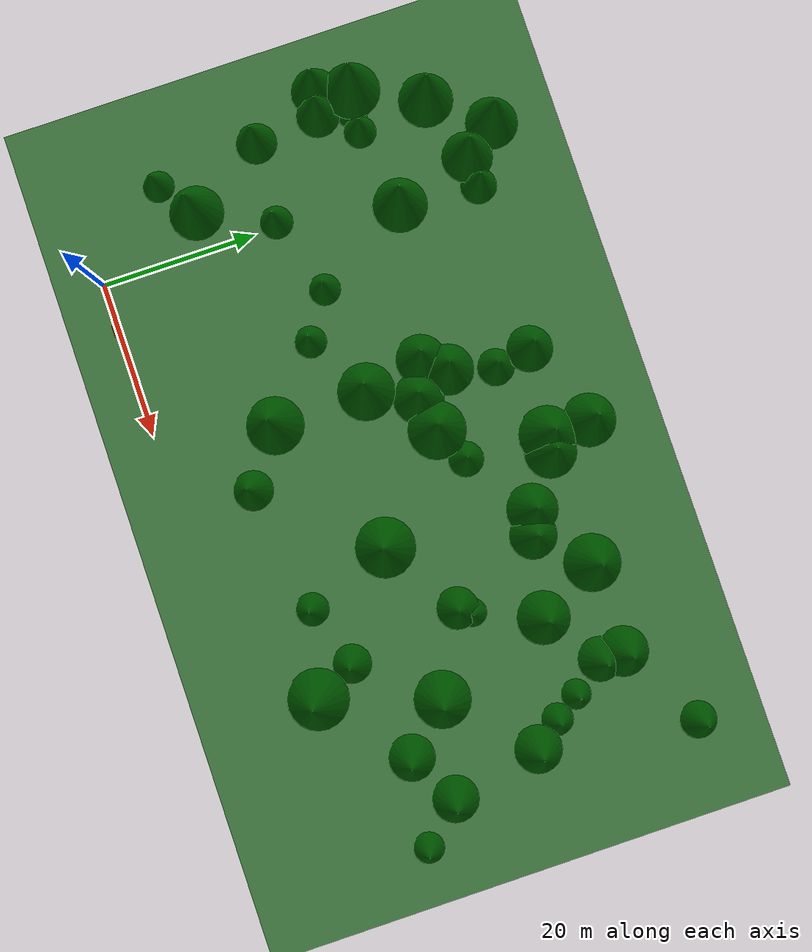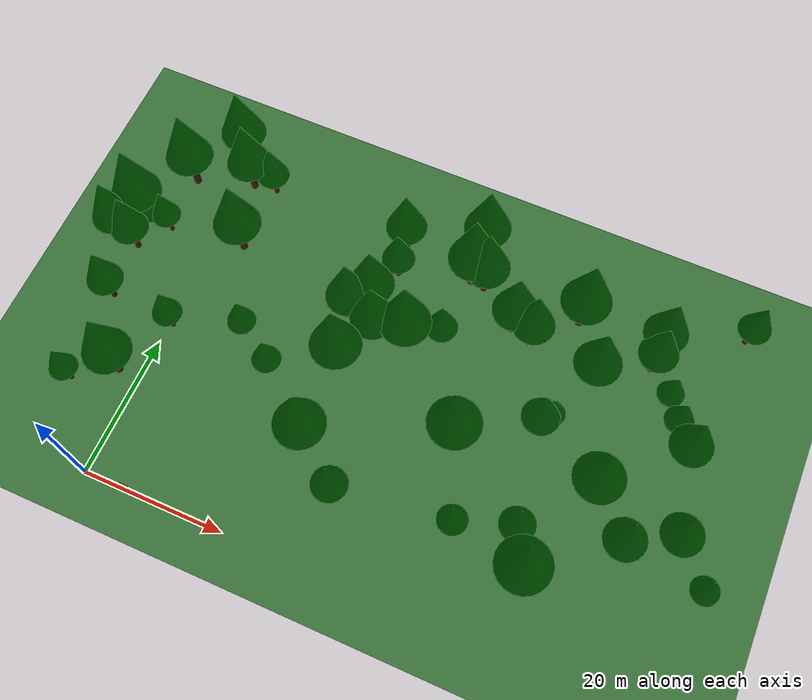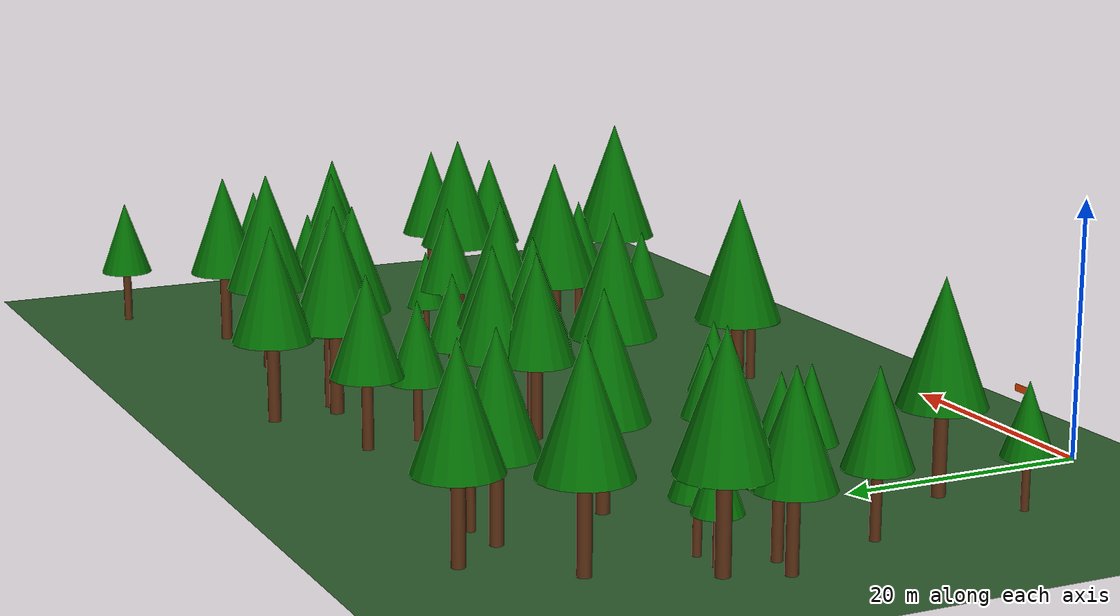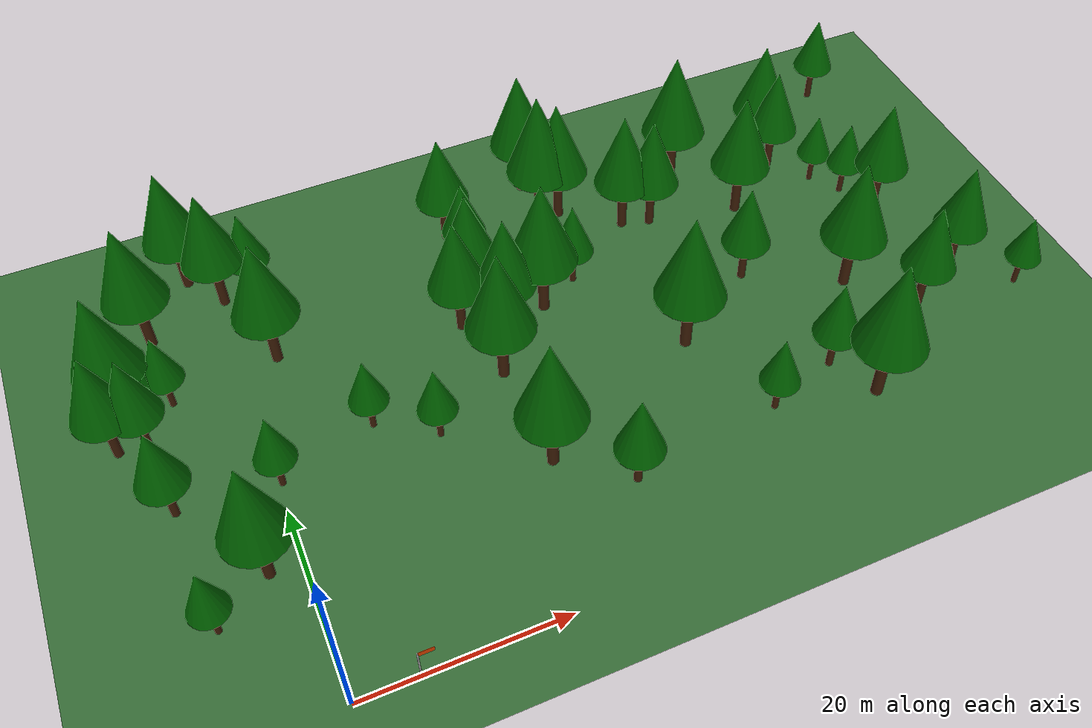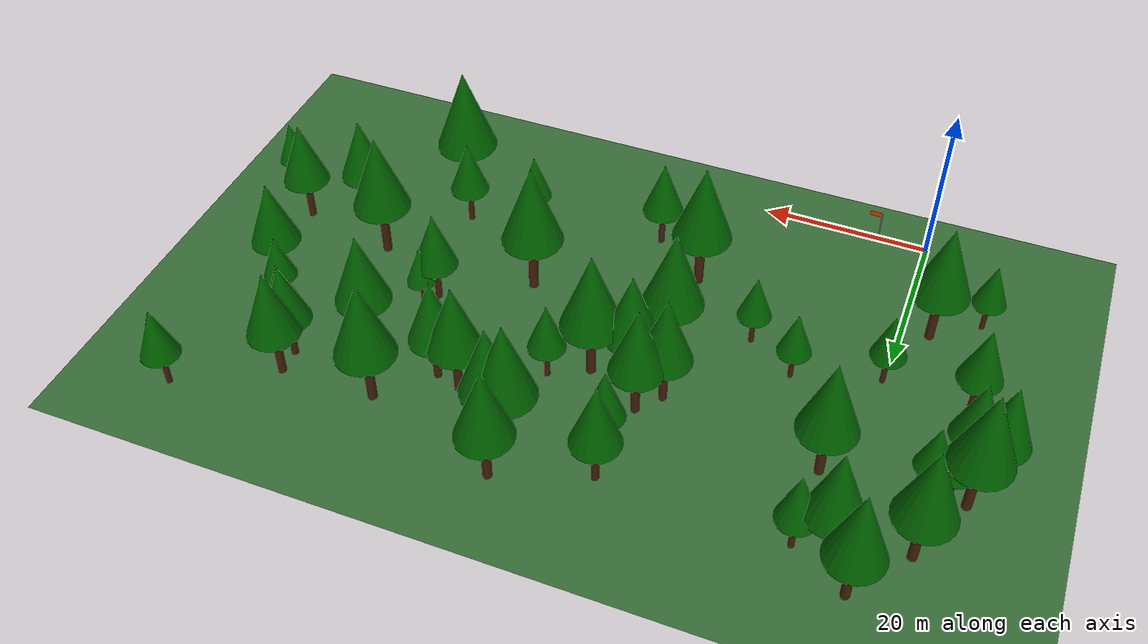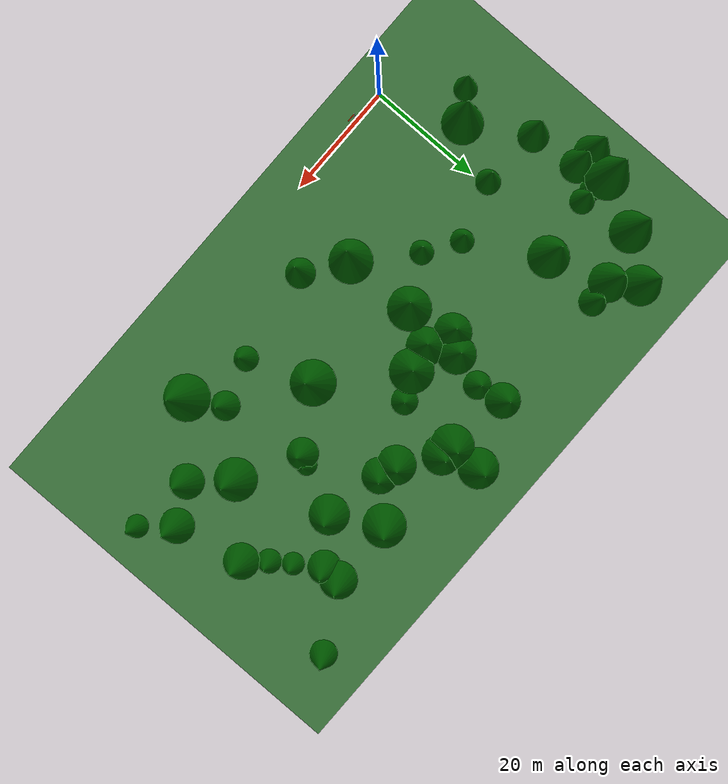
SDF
<sdf version="1.9">
 <world name="Forest_world">
  <model name="ground_plane">
   <static>true</static>
   <link name="link">
    <collision name="collision">
     <geometry><plane><normal>0 0 1</normal><size>500 500</size></plane></geometry>
    </collision>
    <visual name="visual">
     <geometry><plane><normal>0 0 1</normal><size>500 500</size></plane></geometry>
     <material><ambient>0.2 0.4 0.2 1</ambient><diffuse>0.2 0.4 0.2 1</diffuse></material>
    </visual>
   </link>
  </model>
  <model name="windsock_flag">
   <pose>6 0 0 0 0 0</pose>
   <link name="pole">
    <pose>0 0 2 0 0 0</pose>
    <inertial><mass>100</mass><inertia><ixx>1</ixx><iyy>1</iyy><izz>1</izz></inertia></inertial>
    <collision name="col">
     <geometry><cylinder><radius>0.08</radius><length>4</length></cylinder></geometry>
    </collision>
    <visual name="vis">
     <geometry><cylinder><radius>0.08</radius><length>4</length></cylinder></geometry>
     <material><ambient>0.8 0.8 0.8 1</ambient><diffuse>0.8 0.8 0.8 1</diffuse></material>
    </visual>
   </link>
   <joint name="fixed_to_ground" type="fixed"><parent>world</parent><child>pole</child></joint>
   <link name="fabric">
    <pose>0.75 0 3.8 0 0 0</pose>
    <enable_wind>true</enable_wind>
    <inertial><mass>0.15</mass><inertia><ixx>0.01</ixx><iyy>0.01</iyy><izz>0.01</izz></inertia></inertial>
    <collision name="col"><geometry><box><size>1.5 0.02 0.6</size></box></geometry></collision>
    <visual name="vis">
     <geometry><box><size>1.5 0.02 0.6</size></box></geometry>
     <material><ambient>1.0 0.3 0.0 1</ambient><diffuse>1.0 0.3 0.0 1</diffuse></material>
    </visual>
   </link>
   <joint name="hinge" type="universal">
    <parent>pole</parent>
    <child>fabric</child>
    <pose>-0.75 0 0 0 0 0</pose>
    <axis><xyz>0 0 1</xyz></axis>
    <axis2><xyz>0 1 0</xyz></axis2>
   </joint>
  </model>
  <model name="tree_3">
   <static>true</static>
   <pose>53.28 30.68 0 0 0 0</pose>
   <link name="link">
    <collision name="trunk_col">
     <pose>0 0 1.76 0 0 0</pose>
     <geometry><cylinder><radius>0.28</radius><length>3.52</length></cylinder></geometry>
    </collision>
    <visual name="trunk_vis">
     <pose>0 0 1.76 0 0 0</pose>
     <geometry><cylinder><radius>0.28</radius><length>3.52</length></cylinder></geometry>
     <material><ambient>0.3 0.15 0.05 1</ambient><diffuse>0.3 0.15 0.05 1</diffuse></material>
    </visual>
    <collision name="leaves_col">
     <pose>0 0 5.98 0 0 0</pose>
     <geometry><cone><radius>1.76</radius><length>4.93</length></cone></geometry>
    </collision>
    <visual name="leaves_vis">
     <pose>0 0 5.98 0 0 0</pose>
     <geometry><cone><radius>1.76</radius><length>4.93</length></cone></geometry>
     <material><ambient>0.0 0.4 0.0 1</ambient><diffuse>0.0 0.4 0.0 1</diffuse></material>
    </visual>
   </link>
  </model>
  <model name="tree_5">
   <static>true</static>
   <pose>46.70 12.42 0 0 0 0</pose>
   <link name="link">
    <collision name="trunk_col">
     <pose>0 0 2.06 0 0 0</pose>
     <geometry><cylinder><radius>0.33</radius><length>4.13</length></cylinder></geometry>
    </collision>
    <visual name="trunk_vis">
     <pose>0 0 2.06 0 0 0</pose>
     <geometry><cylinder><radius>0.33</radius><length>4.13</length></cylinder></geometry>
     <material><ambient>0.3 0.15 0.05 1</ambient><diffuse>0.3 0.15 0.05 1</diffuse></material>
    </visual>
    <collision name="leaves_col">
     <pose>0 0 7.01 0 0 0</pose>
     <geometry><cone><radius>2.06</radius><length>5.78</length></cone></geometry>
    </collision>
    <visual name="leaves_vis">
     <pose>0 0 7.01 0 0 0</pose>
     <geometry><cone><radius>2.06</radius><length>5.78</length></cone></geometry>
     <material><ambient>0.0 0.4 0.0 1</ambient><diffuse>0.0 0.4 0.0 1</diffuse></material>
    </visual>
   </link>
  </model>
  <model name="tree_6">
   <static>true</static>
   <pose>31.08 33.52 0 0 0 0</pose>
   <link name="link">
    <collision name="trunk_col">
     <pose>0 0 3.58 0 0 0</pose>
     <geometry><cylinder><radius>0.57</radius><length>7.17</length></cylinder></geometry>
    </collision>
    <visual name="trunk_vis">
     <pose>0 0 3.58 0 0 0</pose>
     <geometry><cylinder><radius>0.57</radius><length>7.17</length></cylinder></geometry>
     <material><ambient>0.3 0.15 0.05 1</ambient><diffuse>0.3 0.15 0.05 1</diffuse></material>
    </visual>
    <collision name="leaves_col">
     <pose>0 0 12.19 0 0 0</pose>
     <geometry><cone><radius>3.58</radius><length>10.04</length></cone></geometry>
    </collision>
    <visual name="leaves_vis">
     <pose>0 0 12.19 0 0 0</pose>
     <geometry><cone><radius>3.58</radius><length>10.04</length></cone></geometry>
     <material><ambient>0.0 0.4 0.0 1</ambient><diffuse>0.0 0.4 0.0 1</diffuse></material>
    </visual>
   </link>
  </model>
  <model name="tree_15">
   <static>true</static>
   <pose>-12.96 32.70 0 0 0 0</pose>
   <link name="link">
    <collision name="trunk_col">
     <pose>0 0 2.96 0 0 0</pose>
     <geometry><cylinder><radius>0.47</radius><length>5.92</length></cylinder></geometry>
    </collision>
    <visual name="trunk_vis">
     <pose>0 0 2.96 0 0 0</pose>
     <geometry><cylinder><radius>0.47</radius><length>5.92</length></cylinder></geometry>
     <material><ambient>0.3 0.15 0.05 1</ambient><diffuse>0.3 0.15 0.05 1</diffuse></material>
    </visual>
    <collision name="leaves_col">
     <pose>0 0 10.06 0 0 0</pose>
     <geometry><cone><radius>2.96</radius><length>8.29</length></cone></geometry>
    </collision>
    <visual name="leaves_vis">
     <pose>0 0 10.06 0 0 0</pose>
     <geometry><cone><radius>2.96</radius><length>8.29</length></cone></geometry>
     <material><ambient>0.0 0.4 0.0 1</ambient><diffuse>0.0 0.4 0.0 1</diffuse></material>
    </visual>
   </link>
  </model>
  <model name="tree_20">
   <static>true</static>
   <pose>56.82 10.01 0 0 0 0</pose>
   <link name="link">
    <collision name="trunk_col">
     <pose>0 0 3.73 0 0 0</pose>
     <geometry><cylinder><radius>0.60</radius><length>7.46</length></cylinder></geometry>
    </collision>
    <visual name="trunk_vis">
     <pose>0 0 3.73 0 0 0</pose>
     <geometry><cylinder><radius>0.60</radius><length>7.46</length></cylinder></geometry>
     <material><ambient>0.3 0.15 0.05 1</ambient><diffuse>0.3 0.15 0.05 1</diffuse></material>
    </visual>
    <collision name="leaves_col">
     <pose>0 0 12.69 0 0 0</pose>
     <geometry><cone><radius>3.73</radius><length>10.45</length></cone></geometry>
    </collision>
    <visual name="leaves_vis">
     <pose>0 0 12.69 0 0 0</pose>
     <geometry><cone><radius>3.73</radius><length>10.45</length></cone></geometry>
     <material><ambient>0.0 0.4 0.0 1</ambient><diffuse>0.0 0.4 0.0 1</diffuse></material>
    </visual>
   </link>
  </model>
  <model name="tree_23">
   <static>true</static>
   <pose>-9.40 23.94 0 0 0 0</pose>
   <link name="link">
    <collision name="trunk_col">
     <pose>0 0 2.56 0 0 0</pose>
     <geometry><cylinder><radius>0.41</radius><length>5.13</length></cylinder></geometry>
    </collision>
    <visual name="trunk_vis">
     <pose>0 0 2.56 0 0 0</pose>
     <geometry><cylinder><radius>0.41</radius><length>5.13</length></cylinder></geometry>
     <material><ambient>0.3 0.15 0.05 1</ambient><diffuse>0.3 0.15 0.05 1</diffuse></material>
    </visual>
    <collision name="leaves_col">
     <pose>0 0 8.71 0 0 0</pose>
     <geometry><cone><radius>2.56</radius><length>7.18</length></cone></geometry>
    </collision>
    <visual name="leaves_vis">
     <pose>0 0 8.71 0 0 0</pose>
     <geometry><cone><radius>2.56</radius><length>7.18</length></cone></geometry>
     <material><ambient>0.0 0.4 0.0 1</ambient><diffuse>0.0 0.4 0.0 1</diffuse></material>
    </visual>
   </link>
  </model>
  <model name="tree_24">
   <static>true</static>
   <pose>-3.13 14.43 0 0 0 0</pose>
   <link name="link">
    <collision name="trunk_col">
     <pose>0 0 3.37 0 0 0</pose>
     <geometry><cylinder><radius>0.54</radius><length>6.75</length></cylinder></geometry>
    </collision>
    <visual name="trunk_vis">
     <pose>0 0 3.37 0 0 0</pose>
     <geometry><cylinder><radius>0.54</radius><length>6.75</length></cylinder></geometry>
     <material><ambient>0.3 0.15 0.05 1</ambient><diffuse>0.3 0.15 0.05 1</diffuse></material>
    </visual>
    <collision name="leaves_col">
     <pose>0 0 11.47 0 0 0</pose>
     <geometry><cone><radius>3.37</radius><length>9.45</length></cone></geometry>
    </collision>
    <visual name="leaves_vis">
     <pose>0 0 11.47 0 0 0</pose>
     <geometry><cone><radius>3.37</radius><length>9.45</length></cone></geometry>
     <material><ambient>0.0 0.4 0.0 1</ambient><diffuse>0.0 0.4 0.0 1</diffuse></material>
    </visual>
   </link>
  </model>
  <model name="tree_37">
   <static>true</static>
   <pose>43.69 41.32 0 0 0 0</pose>
   <link name="link">
    <collision name="trunk_col">
     <pose>0 0 3.17 0 0 0</pose>
     <geometry><cylinder><radius>0.51</radius><length>6.34</length></cylinder></geometry>
    </collision>
    <visual name="trunk_vis">
     <pose>0 0 3.17 0 0 0</pose>
     <geometry><cylinder><radius>0.51</radius><length>6.34</length></cylinder></geometry>
     <material><ambient>0.3 0.15 0.05 1</ambient><diffuse>0.3 0.15 0.05 1</diffuse></material>
    </visual>
    <collision name="leaves_col">
     <pose>0 0 10.78 0 0 0</pose>
     <geometry><cone><radius>3.17</radius><length>8.88</length></cone></geometry>
    </collision>
    <visual name="leaves_vis">
     <pose>0 0 10.78 0 0 0</pose>
     <geometry><cone><radius>3.17</radius><length>8.88</length></cone></geometry>
     <material><ambient>0.0 0.4 0.0 1</ambient><diffuse>0.0 0.4 0.0 1</diffuse></material>
    </visual>
   </link>
  </model>
  <model name="tree_40">
   <static>true</static>
   <pose>0.40 23.18 0 0 0 0</pose>
   <link name="link">
    <collision name="trunk_col">
     <pose>0 0 2.09 0 0 0</pose>
     <geometry><cylinder><radius>0.33</radius><length>4.17</length></cylinder></geometry>
    </collision>
    <visual name="trunk_vis">
     <pose>0 0 2.09 0 0 0</pose>
     <geometry><cylinder><radius>0.33</radius><length>4.17</length></cylinder></geometry>
     <material><ambient>0.3 0.15 0.05 1</ambient><diffuse>0.3 0.15 0.05 1</diffuse></material>
    </visual>
    <collision name="leaves_col">
     <pose>0 0 7.10 0 0 0</pose>
     <geometry><cone><radius>2.09</radius><length>5.84</length></cone></geometry>
    </collision>
    <visual name="leaves_vis">
     <pose>0 0 7.10 0 0 0</pose>
     <geometry><cone><radius>2.09</radius><length>5.84</length></cone></geometry>
     <material><ambient>0.0 0.4 0.0 1</ambient><diffuse>0.0 0.4 0.0 1</diffuse></material>
    </visual>
   </link>
  </model>
  <model name="tree_41">
   <static>true</static>
   <pose>10.14 26.17 0 0 0 0</pose>
   <link name="link">
    <collision name="trunk_col">
     <pose>0 0 1.99 0 0 0</pose>
     <geometry><cylinder><radius>0.32</radius><length>3.97</length></cylinder></geometry>
    </collision>
    <visual name="trunk_vis">
     <pose>0 0 1.99 0 0 0</pose>
     <geometry><cylinder><radius>0.32</radius><length>3.97</length></cylinder></geometry>
     <material><ambient>0.3 0.15 0.05 1</ambient><diffuse>0.3 0.15 0.05 1</diffuse></material>
    </visual>
    <collision name="leaves_col">
     <pose>0 0 6.75 0 0 0</pose>
     <geometry><cone><radius>1.99</radius><length>5.56</length></cone></geometry>
    </collision>
    <visual name="leaves_vis">
     <pose>0 0 6.75 0 0 0</pose>
     <geometry><cone><radius>1.99</radius><length>5.56</length></cone></geometry>
     <material><ambient>0.0 0.4 0.0 1</ambient><diffuse>0.0 0.4 0.0 1</diffuse></material>
    </visual>
   </link>
  </model>
  <model name="tree_50">
   <static>true</static>
   <pose>67.12 18.22 0 0 0 0</pose>
   <link name="link">
    <collision name="trunk_col">
     <pose>0 0 2.85 0 0 0</pose>
     <geometry><cylinder><radius>0.46</radius><length>5.70</length></cylinder></geometry>
    </collision>
    <visual name="trunk_vis">
     <pose>0 0 2.85 0 0 0</pose>
     <geometry><cylinder><radius>0.46</radius><length>5.70</length></cylinder></geometry>
     <material><ambient>0.3 0.15 0.05 1</ambient><diffuse>0.3 0.15 0.05 1</diffuse></material>
    </visual>
    <collision name="leaves_col">
     <pose>0 0 9.69 0 0 0</pose>
     <geometry><cone><radius>2.85</radius><length>7.98</length></cone></geometry>
    </collision>
    <visual name="leaves_vis">
     <pose>0 0 9.69 0 0 0</pose>
     <geometry><cone><radius>2.85</radius><length>7.98</length></cone></geometry>
     <material><ambient>0.0 0.4 0.0 1</ambient><diffuse>0.0 0.4 0.0 1</diffuse></material>
    </visual>
   </link>
  </model>
  <model name="tree_54">
   <static>true</static>
   <pose>56.33 38.41 0 0 0 0</pose>
   <link name="link">
    <collision name="trunk_col">
     <pose>0 0 3.25 0 0 0</pose>
     <geometry><cylinder><radius>0.52</radius><length>6.51</length></cylinder></geometry>
    </collision>
    <visual name="trunk_vis">
     <pose>0 0 3.25 0 0 0</pose>
     <geometry><cylinder><radius>0.52</radius><length>6.51</length></cylinder></geometry>
     <material><ambient>0.3 0.15 0.05 1</ambient><diffuse>0.3 0.15 0.05 1</diffuse></material>
    </visual>
    <collision name="leaves_col">
     <pose>0 0 11.06 0 0 0</pose>
     <geometry><cone><radius>3.25</radius><length>9.11</length></cone></geometry>
    </collision>
    <visual name="leaves_vis">
     <pose>0 0 11.06 0 0 0</pose>
     <geometry><cone><radius>3.25</radius><length>9.11</length></cone></geometry>
     <material><ambient>0.0 0.4 0.0 1</ambient><diffuse>0.0 0.4 0.0 1</diffuse></material>
    </visual>
   </link>
  </model>
  <model name="tree_55">
   <static>true</static>
   <pose>52.07 29.08 0 0 0 0</pose>
   <link name="link">
    <collision name="trunk_col">
     <pose>0 0 2.60 0 0 0</pose>
     <geometry><cylinder><radius>0.42</radius><length>5.21</length></cylinder></geometry>
    </collision>
    <visual name="trunk_vis">
     <pose>0 0 2.60 0 0 0</pose>
     <geometry><cylinder><radius>0.42</radius><length>5.21</length></cylinder></geometry>
     <material><ambient>0.3 0.15 0.05 1</ambient><diffuse>0.3 0.15 0.05 1</diffuse></material>
    </visual>
    <collision name="leaves_col">
     <pose>0 0 8.85 0 0 0</pose>
     <geometry><cone><radius>2.60</radius><length>7.29</length></cone></geometry>
    </collision>
    <visual name="leaves_vis">
     <pose>0 0 8.85 0 0 0</pose>
     <geometry><cone><radius>2.60</radius><length>7.29</length></cone></geometry>
     <material><ambient>0.0 0.4 0.0 1</ambient><diffuse>0.0 0.4 0.0 1</diffuse></material>
    </visual>
   </link>
  </model>
  <model name="tree_57">
   <static>true</static>
   <pose>51.96 45.97 0 0 0 0</pose>
   <link name="link">
    <collision name="trunk_col">
     <pose>0 0 3.51 0 0 0</pose>
     <geometry><cylinder><radius>0.56</radius><length>7.01</length></cylinder></geometry>
    </collision>
    <visual name="trunk_vis">
     <pose>0 0 3.51 0 0 0</pose>
     <geometry><cylinder><radius>0.56</radius><length>7.01</length></cylinder></geometry>
     <material><ambient>0.3 0.15 0.05 1</ambient><diffuse>0.3 0.15 0.05 1</diffuse></material>
    </visual>
    <collision name="leaves_col">
     <pose>0 0 11.92 0 0 0</pose>
     <geometry><cone><radius>3.51</radius><length>9.82</length></cone></geometry>
    </collision>
    <visual name="leaves_vis">
     <pose>0 0 11.92 0 0 0</pose>
     <geometry><cone><radius>3.51</radius><length>9.82</length></cone></geometry>
     <material><ambient>0.0 0.4 0.0 1</ambient><diffuse>0.0 0.4 0.0 1</diffuse></material>
    </visual>
   </link>
  </model>
  <model name="tree_62">
   <static>true</static>
   <pose>-7.01 36.48 0 0 0 0</pose>
   <link name="link">
    <collision name="trunk_col">
     <pose>0 0 2.05 0 0 0</pose>
     <geometry><cylinder><radius>0.33</radius><length>4.10</length></cylinder></geometry>
    </collision>
    <visual name="trunk_vis">
     <pose>0 0 2.05 0 0 0</pose>
     <geometry><cylinder><radius>0.33</radius><length>4.10</length></cylinder></geometry>
     <material><ambient>0.3 0.15 0.05 1</ambient><diffuse>0.3 0.15 0.05 1</diffuse></material>
    </visual>
    <collision name="leaves_col">
     <pose>0 0 6.97 0 0 0</pose>
     <geometry><cone><radius>2.05</radius><length>5.74</length></cone></geometry>
    </collision>
    <visual name="leaves_vis">
     <pose>0 0 6.97 0 0 0</pose>
     <geometry><cone><radius>2.05</radius><length>5.74</length></cone></geometry>
     <material><ambient>0.0 0.4 0.0 1</ambient><diffuse>0.0 0.4 0.0 1</diffuse></material>
    </visual>
   </link>
  </model>
  <model name="tree_71">
   <static>true</static>
   <pose>70.95 32.81 0 0 0 0</pose>
   <link name="link">
    <collision name="trunk_col">
     <pose>0 0 2.93 0 0 0</pose>
     <geometry><cylinder><radius>0.47</radius><length>5.86</length></cylinder></geometry>
    </collision>
    <visual name="trunk_vis">
     <pose>0 0 2.93 0 0 0</pose>
     <geometry><cylinder><radius>0.47</radius><length>5.86</length></cylinder></geometry>
     <material><ambient>0.3 0.15 0.05 1</ambient><diffuse>0.3 0.15 0.05 1</diffuse></material>
    </visual>
    <collision name="leaves_col">
     <pose>0 0 9.96 0 0 0</pose>
     <geometry><cone><radius>2.93</radius><length>8.20</length></cone></geometry>
    </collision>
    <visual name="leaves_vis">
     <pose>0 0 9.96 0 0 0</pose>
     <geometry><cone><radius>2.93</radius><length>8.20</length></cone></geometry>
     <material><ambient>0.0 0.4 0.0 1</ambient><diffuse>0.0 0.4 0.0 1</diffuse></material>
    </visual>
   </link>
  </model>
  <model name="tree_73">
   <static>true</static>
   <pose>63.26 43.30 0 0 0 0</pose>
   <link name="link">
    <collision name="trunk_col">
     <pose>0 0 2.74 0 0 0</pose>
     <geometry><cylinder><radius>0.44</radius><length>5.47</length></cylinder></geometry>
    </collision>
    <visual name="trunk_vis">
     <pose>0 0 2.74 0 0 0</pose>
     <geometry><cylinder><radius>0.44</radius><length>5.47</length></cylinder></geometry>
     <material><ambient>0.3 0.15 0.05 1</ambient><diffuse>0.3 0.15 0.05 1</diffuse></material>
    </visual>
    <collision name="leaves_col">
     <pose>0 0 9.31 0 0 0</pose>
     <geometry><cone><radius>2.74</radius><length>7.66</length></cone></geometry>
    </collision>
    <visual name="leaves_vis">
     <pose>0 0 9.31 0 0 0</pose>
     <geometry><cone><radius>2.74</radius><length>7.66</length></cone></geometry>
     <material><ambient>0.0 0.4 0.0 1</ambient><diffuse>0.0 0.4 0.0 1</diffuse></material>
    </visual>
   </link>
  </model>
  <model name="tree_76">
   <static>true</static>
   <pose>42.39 23.21 0 0 0 0</pose>
   <link name="link">
    <collision name="trunk_col">
     <pose>0 0 3.67 0 0 0</pose>
     <geometry><cylinder><radius>0.59</radius><length>7.34</length></cylinder></geometry>
    </collision>
    <visual name="trunk_vis">
     <pose>0 0 3.67 0 0 0</pose>
     <geometry><cylinder><radius>0.59</radius><length>7.34</length></cylinder></geometry>
     <material><ambient>0.3 0.15 0.05 1</ambient><diffuse>0.3 0.15 0.05 1</diffuse></material>
    </visual>
    <collision name="leaves_col">
     <pose>0 0 12.48 0 0 0</pose>
     <geometry><cone><radius>3.67</radius><length>10.28</length></cone></geometry>
    </collision>
    <visual name="leaves_vis">
     <pose>0 0 12.48 0 0 0</pose>
     <geometry><cone><radius>3.67</radius><length>10.28</length></cone></geometry>
     <material><ambient>0.0 0.4 0.0 1</ambient><diffuse>0.0 0.4 0.0 1</diffuse></material>
    </visual>
   </link>
  </model>
  <model name="tree_78">
   <static>true</static>
   <pose>24.54 37.17 0 0 0 0</pose>
   <link name="link">
    <collision name="trunk_col">
     <pose>0 0 3.16 0 0 0</pose>
     <geometry><cylinder><radius>0.51</radius><length>6.32</length></cylinder></geometry>
    </collision>
    <visual name="trunk_vis">
     <pose>0 0 3.16 0 0 0</pose>
     <geometry><cylinder><radius>0.51</radius><length>6.32</length></cylinder></geometry>
     <material><ambient>0.3 0.15 0.05 1</ambient><diffuse>0.3 0.15 0.05 1</diffuse></material>
    </visual>
    <collision name="leaves_col">
     <pose>0 0 10.75 0 0 0</pose>
     <geometry><cone><radius>3.16</radius><length>8.85</length></cone></geometry>
    </collision>
    <visual name="leaves_vis">
     <pose>0 0 10.75 0 0 0</pose>
     <geometry><cone><radius>3.16</radius><length>8.85</length></cone></geometry>
     <material><ambient>0.0 0.4 0.0 1</ambient><diffuse>0.0 0.4 0.0 1</diffuse></material>
    </visual>
   </link>
  </model>
  <model name="tree_91">
   <static>true</static>
   <pose>-10.17 32.15 0 0 0 0</pose>
   <link name="link">
    <collision name="trunk_col">
     <pose>0 0 2.71 0 0 0</pose>
     <geometry><cylinder><radius>0.43</radius><length>5.43</length></cylinder></geometry>
    </collision>
    <visual name="trunk_vis">
     <pose>0 0 2.71 0 0 0</pose>
     <geometry><cylinder><radius>0.43</radius><length>5.43</length></cylinder></geometry>
     <material><ambient>0.3 0.15 0.05 1</ambient><diffuse>0.3 0.15 0.05 1</diffuse></material>
    </visual>
    <collision name="leaves_col">
     <pose>0 0 9.23 0 0 0</pose>
     <geometry><cone><radius>2.71</radius><length>7.60</length></cone></geometry>
    </collision>
    <visual name="leaves_vis">
     <pose>0 0 9.23 0 0 0</pose>
     <geometry><cone><radius>2.71</radius><length>7.60</length></cone></geometry>
     <material><ambient>0.0 0.4 0.0 1</ambient><diffuse>0.0 0.4 0.0 1</diffuse></material>
    </visual>
   </link>
  </model>
  <model name="tree_98">
   <static>true</static>
   <pose>35.82 45.89 0 0 0 0</pose>
   <link name="link">
    <collision name="trunk_col">
     <pose>0 0 3.54 0 0 0</pose>
     <geometry><cylinder><radius>0.57</radius><length>7.08</length></cylinder></geometry>
    </collision>
    <visual name="trunk_vis">
     <pose>0 0 3.54 0 0 0</pose>
     <geometry><cylinder><radius>0.57</radius><length>7.08</length></cylinder></geometry>
     <material><ambient>0.3 0.15 0.05 1</ambient><diffuse>0.3 0.15 0.05 1</diffuse></material>
    </visual>
    <collision name="leaves_col">
     <pose>0 0 12.04 0 0 0</pose>
     <geometry><cone><radius>3.54</radius><length>9.92</length></cone></geometry>
    </collision>
    <visual name="leaves_vis">
     <pose>0 0 12.04 0 0 0</pose>
     <geometry><cone><radius>3.54</radius><length>9.92</length></cone></geometry>
     <material><ambient>0.0 0.4 0.0 1</ambient><diffuse>0.0 0.4 0.0 1</diffuse></material>
    </visual>
   </link>
  </model>
  <model name="tree_101">
   <static>true</static>
   <pose>24.00 26.97 0 0 0 0</pose>
   <link name="link">
    <collision name="trunk_col">
     <pose>0 0 3.54 0 0 0</pose>
     <geometry><cylinder><radius>0.57</radius><length>7.08</length></cylinder></geometry>
    </collision>
    <visual name="trunk_vis">
     <pose>0 0 3.54 0 0 0</pose>
     <geometry><cylinder><radius>0.57</radius><length>7.08</length></cylinder></geometry>
     <material><ambient>0.3 0.15 0.05 1</ambient><diffuse>0.3 0.15 0.05 1</diffuse></material>
    </visual>
    <collision name="leaves_col">
     <pose>0 0 12.04 0 0 0</pose>
     <geometry><cone><radius>3.54</radius><length>9.92</length></cone></geometry>
    </collision>
    <visual name="leaves_vis">
     <pose>0 0 12.04 0 0 0</pose>
     <geometry><cone><radius>3.54</radius><length>9.92</length></cone></geometry>
     <material><ambient>0.0 0.4 0.0 1</ambient><diffuse>0.0 0.4 0.0 1</diffuse></material>
    </visual>
   </link>
  </model>
  <model name="tree_122">
   <static>true</static>
   <pose>46.67 40.47 0 0 0 0</pose>
   <link name="link">
    <collision name="trunk_col">
     <pose>0 0 2.94 0 0 0</pose>
     <geometry><cylinder><radius>0.47</radius><length>5.89</length></cylinder></geometry>
    </collision>
    <visual name="trunk_vis">
     <pose>0 0 2.94 0 0 0</pose>
     <geometry><cylinder><radius>0.47</radius><length>5.89</length></cylinder></geometry>
     <material><ambient>0.3 0.15 0.05 1</ambient><diffuse>0.3 0.15 0.05 1</diffuse></material>
    </visual>
    <collision name="leaves_col">
     <pose>0 0 10.01 0 0 0</pose>
     <geometry><cone><radius>2.94</radius><length>8.24</length></cone></geometry>
    </collision>
    <visual name="leaves_vis">
     <pose>0 0 10.01 0 0 0</pose>
     <geometry><cone><radius>2.94</radius><length>8.24</length></cone></geometry>
     <material><ambient>0.0 0.4 0.0 1</ambient><diffuse>0.0 0.4 0.0 1</diffuse></material>
    </visual>
   </link>
  </model>
  <model name="tree_123">
   <static>true</static>
   <pose>35.73 51.24 0 0 0 0</pose>
   <link name="link">
    <collision name="trunk_col">
     <pose>0 0 3.29 0 0 0</pose>
     <geometry><cylinder><radius>0.53</radius><length>6.58</length></cylinder></geometry>
    </collision>
    <visual name="trunk_vis">
     <pose>0 0 3.29 0 0 0</pose>
     <geometry><cylinder><radius>0.53</radius><length>6.58</length></cylinder></geometry>
     <material><ambient>0.3 0.15 0.05 1</ambient><diffuse>0.3 0.15 0.05 1</diffuse></material>
    </visual>
    <collision name="leaves_col">
     <pose>0 0 11.19 0 0 0</pose>
     <geometry><cone><radius>3.29</radius><length>9.21</length></cone></geometry>
    </collision>
    <visual name="leaves_vis">
     <pose>0 0 11.19 0 0 0</pose>
     <geometry><cone><radius>3.29</radius><length>9.21</length></cone></geometry>
     <material><ambient>0.0 0.4 0.0 1</ambient><diffuse>0.0 0.4 0.0 1</diffuse></material>
    </visual>
   </link>
  </model>
  <model name="tree_136">
   <static>true</static>
   <pose>25.95 42.89 0 0 0 0</pose>
   <link name="link">
    <collision name="trunk_col">
     <pose>0 0 2.32 0 0 0</pose>
     <geometry><cylinder><radius>0.37</radius><length>4.64</length></cylinder></geometry>
    </collision>
    <visual name="trunk_vis">
     <pose>0 0 2.32 0 0 0</pose>
     <geometry><cylinder><radius>0.37</radius><length>4.64</length></cylinder></geometry>
     <material><ambient>0.3 0.15 0.05 1</ambient><diffuse>0.3 0.15 0.05 1</diffuse></material>
    </visual>
    <collision name="leaves_col">
     <pose>0 0 7.89 0 0 0</pose>
     <geometry><cone><radius>2.32</radius><length>6.50</length></cone></geometry>
    </collision>
    <visual name="leaves_vis">
     <pose>0 0 7.89 0 0 0</pose>
     <geometry><cone><radius>2.32</radius><length>6.50</length></cone></geometry>
     <material><ambient>0.0 0.4 0.0 1</ambient><diffuse>0.0 0.4 0.0 1</diffuse></material>
    </visual>
   </link>
  </model>
  <model name="tree_137">
   <static>true</static>
   <pose>22.30 34.45 0 0 0 0</pose>
   <link name="link">
    <collision name="trunk_col">
     <pose>0 0 3.09 0 0 0</pose>
     <geometry><cylinder><radius>0.49</radius><length>6.17</length></cylinder></geometry>
    </collision>
    <visual name="trunk_vis">
     <pose>0 0 3.09 0 0 0</pose>
     <geometry><cylinder><radius>0.49</radius><length>6.17</length></cylinder></geometry>
     <material><ambient>0.3 0.15 0.05 1</ambient><diffuse>0.3 0.15 0.05 1</diffuse></material>
    </visual>
    <collision name="leaves_col">
     <pose>0 0 10.49 0 0 0</pose>
     <geometry><cone><radius>3.09</radius><length>8.64</length></cone></geometry>
    </collision>
    <visual name="leaves_vis">
     <pose>0 0 10.49 0 0 0</pose>
     <geometry><cone><radius>3.09</radius><length>8.64</length></cone></geometry>
     <material><ambient>0.0 0.4 0.0 1</ambient><diffuse>0.0 0.4 0.0 1</diffuse></material>
    </visual>
   </link>
  </model>
  <model name="tree_138">
   <static>true</static>
   <pose>4.10 48.10 0 0 0 0</pose>
   <link name="link">
    <collision name="trunk_col">
     <pose>0 0 2.28 0 0 0</pose>
     <geometry><cylinder><radius>0.36</radius><length>4.56</length></cylinder></geometry>
    </collision>
    <visual name="trunk_vis">
     <pose>0 0 2.28 0 0 0</pose>
     <geometry><cylinder><radius>0.36</radius><length>4.56</length></cylinder></geometry>
     <material><ambient>0.3 0.15 0.05 1</ambient><diffuse>0.3 0.15 0.05 1</diffuse></material>
    </visual>
    <collision name="leaves_col">
     <pose>0 0 7.74 0 0 0</pose>
     <geometry><cone><radius>2.28</radius><length>6.38</length></cone></geometry>
    </collision>
    <visual name="leaves_vis">
     <pose>0 0 7.74 0 0 0</pose>
     <geometry><cone><radius>2.28</radius><length>6.38</length></cone></geometry>
     <material><ambient>0.0 0.4 0.0 1</ambient><diffuse>0.0 0.4 0.0 1</diffuse></material>
    </visual>
   </link>
  </model>
  <model name="tree_139">
   <static>true</static>
   <pose>78.25 16.66 0 0 0 0</pose>
   <link name="link">
    <collision name="trunk_col">
     <pose>0 0 1.91 0 0 0</pose>
     <geometry><cylinder><radius>0.30</radius><length>3.81</length></cylinder></geometry>
    </collision>
    <visual name="trunk_vis">
     <pose>0 0 1.91 0 0 0</pose>
     <geometry><cylinder><radius>0.30</radius><length>3.81</length></cylinder></geometry>
     <material><ambient>0.3 0.15 0.05 1</ambient><diffuse>0.3 0.15 0.05 1</diffuse></material>
    </visual>
    <collision name="leaves_col">
     <pose>0 0 6.48 0 0 0</pose>
     <geometry><cone><radius>1.91</radius><length>5.34</length></cone></geometry>
    </collision>
    <visual name="leaves_vis">
     <pose>0 0 6.48 0 0 0</pose>
     <geometry><cone><radius>1.91</radius><length>5.34</length></cone></geometry>
     <material><ambient>0.0 0.4 0.0 1</ambient><diffuse>0.0 0.4 0.0 1</diffuse></material>
    </visual>
   </link>
  </model>
  <model name="tree_145">
   <static>true</static>
   <pose>63.18 46.19 0 0 0 0</pose>
   <link name="link">
    <collision name="trunk_col">
     <pose>0 0 3.06 0 0 0</pose>
     <geometry><cylinder><radius>0.49</radius><length>6.13</length></cylinder></geometry>
    </collision>
    <visual name="trunk_vis">
     <pose>0 0 3.06 0 0 0</pose>
     <geometry><cylinder><radius>0.49</radius><length>6.13</length></cylinder></geometry>
     <material><ambient>0.3 0.15 0.05 1</ambient><diffuse>0.3 0.15 0.05 1</diffuse></material>
    </visual>
    <collision name="leaves_col">
     <pose>0 0 10.41 0 0 0</pose>
     <geometry><cone><radius>3.06</radius><length>8.58</length></cone></geometry>
    </collision>
    <visual name="leaves_vis">
     <pose>0 0 10.41 0 0 0</pose>
     <geometry><cone><radius>3.06</radius><length>8.58</length></cone></geometry>
     <material><ambient>0.0 0.4 0.0 1</ambient><diffuse>0.0 0.4 0.0 1</diffuse></material>
    </visual>
   </link>
  </model>
  <model name="tree_147">
   <static>true</static>
   <pose>73.38 21.60 0 0 0 0</pose>
   <link name="link">
    <collision name="trunk_col">
     <pose>0 0 2.85 0 0 0</pose>
     <geometry><cylinder><radius>0.46</radius><length>5.70</length></cylinder></geometry>
    </collision>
    <visual name="trunk_vis">
     <pose>0 0 2.85 0 0 0</pose>
     <geometry><cylinder><radius>0.46</radius><length>5.70</length></cylinder></geometry>
     <material><ambient>0.3 0.15 0.05 1</ambient><diffuse>0.3 0.15 0.05 1</diffuse></material>
    </visual>
    <collision name="leaves_col">
     <pose>0 0 9.69 0 0 0</pose>
     <geometry><cone><radius>2.85</radius><length>7.98</length></cone></geometry>
    </collision>
    <visual name="leaves_vis">
     <pose>0 0 9.69 0 0 0</pose>
     <geometry><cone><radius>2.85</radius><length>7.98</length></cone></geometry>
     <material><ambient>0.0 0.4 0.0 1</ambient><diffuse>0.0 0.4 0.0 1</diffuse></material>
    </visual>
   </link>
  </model>
  <model name="tree_150">
   <static>true</static>
   <pose>26.75 32.69 0 0 0 0</pose>
   <link name="link">
    <collision name="trunk_col">
     <pose>0 0 3.14 0 0 0</pose>
     <geometry><cylinder><radius>0.50</radius><length>6.28</length></cylinder></geometry>
    </collision>
    <visual name="trunk_vis">
     <pose>0 0 3.14 0 0 0</pose>
     <geometry><cylinder><radius>0.50</radius><length>6.28</length></cylinder></geometry>
     <material><ambient>0.3 0.15 0.05 1</ambient><diffuse>0.3 0.15 0.05 1</diffuse></material>
    </visual>
    <collision name="leaves_col">
     <pose>0 0 10.68 0 0 0</pose>
     <geometry><cone><radius>3.14</radius><length>8.79</length></cone></geometry>
    </collision>
    <visual name="leaves_vis">
     <pose>0 0 10.68 0 0 0</pose>
     <geometry><cone><radius>3.14</radius><length>8.79</length></cone></geometry>
     <material><ambient>0.0 0.4 0.0 1</ambient><diffuse>0.0 0.4 0.0 1</diffuse></material>
    </visual>
   </link>
  </model>
  <model name="tree_152">
   <static>true</static>
   <pose>-7.39 45.09 0 0 0 0</pose>
   <link name="link">
    <collision name="trunk_col">
     <pose>0 0 3.39 0 0 0</pose>
     <geometry><cylinder><radius>0.54</radius><length>6.77</length></cylinder></geometry>
    </collision>
    <visual name="trunk_vis">
     <pose>0 0 3.39 0 0 0</pose>
     <geometry><cylinder><radius>0.54</radius><length>6.77</length></cylinder></geometry>
     <material><ambient>0.3 0.15 0.05 1</ambient><diffuse>0.3 0.15 0.05 1</diffuse></material>
    </visual>
    <collision name="leaves_col">
     <pose>0 0 11.52 0 0 0</pose>
     <geometry><cone><radius>3.39</radius><length>9.48</length></cone></geometry>
    </collision>
    <visual name="leaves_vis">
     <pose>0 0 11.52 0 0 0</pose>
     <geometry><cone><radius>3.39</radius><length>9.48</length></cone></geometry>
     <material><ambient>0.0 0.4 0.0 1</ambient><diffuse>0.0 0.4 0.0 1</diffuse></material>
    </visual>
   </link>
  </model>
  <model name="tree_158">
   <static>true</static>
   <pose>25.23 47.37 0 0 0 0</pose>
   <link name="link">
    <collision name="trunk_col">
     <pose>0 0 2.87 0 0 0</pose>
     <geometry><cylinder><radius>0.46</radius><length>5.73</length></cylinder></geometry>
    </collision>
    <visual name="trunk_vis">
     <pose>0 0 2.87 0 0 0</pose>
     <geometry><cylinder><radius>0.46</radius><length>5.73</length></cylinder></geometry>
     <material><ambient>0.3 0.15 0.05 1</ambient><diffuse>0.3 0.15 0.05 1</diffuse></material>
    </visual>
    <collision name="leaves_col">
     <pose>0 0 9.75 0 0 0</pose>
     <geometry><cone><radius>2.87</radius><length>8.03</length></cone></geometry>
    </collision>
    <visual name="leaves_vis">
     <pose>0 0 9.75 0 0 0</pose>
     <geometry><cone><radius>2.87</radius><length>8.03</length></cone></geometry>
     <material><ambient>0.0 0.4 0.0 1</ambient><diffuse>0.0 0.4 0.0 1</diffuse></material>
    </visual>
   </link>
  </model>
  <model name="tree_164">
   <static>true</static>
   <pose>68.66 36.22 0 0 0 0</pose>
   <link name="link">
    <collision name="trunk_col">
     <pose>0 0 2.00 0 0 0</pose>
     <geometry><cylinder><radius>0.32</radius><length>3.99</length></cylinder></geometry>
    </collision>
    <visual name="trunk_vis">
     <pose>0 0 2.00 0 0 0</pose>
     <geometry><cylinder><radius>0.32</radius><length>3.99</length></cylinder></geometry>
     <material><ambient>0.3 0.15 0.05 1</ambient><diffuse>0.3 0.15 0.05 1</diffuse></material>
    </visual>
    <collision name="leaves_col">
     <pose>0 0 6.79 0 0 0</pose>
     <geometry><cone><radius>2.00</radius><length>5.59</length></cone></geometry>
    </collision>
    <visual name="leaves_vis">
     <pose>0 0 6.79 0 0 0</pose>
     <geometry><cone><radius>2.00</radius><length>5.59</length></cone></geometry>
     <material><ambient>0.0 0.4 0.0 1</ambient><diffuse>0.0 0.4 0.0 1</diffuse></material>
    </visual>
   </link>
  </model>
  <model name="tree_174">
   <static>true</static>
   <pose>61.58 23.89 0 0 0 0</pose>
   <link name="link">
    <collision name="trunk_col">
     <pose>0 0 3.48 0 0 0</pose>
     <geometry><cylinder><radius>0.56</radius><length>6.97</length></cylinder></geometry>
    </collision>
    <visual name="trunk_vis">
     <pose>0 0 3.48 0 0 0</pose>
     <geometry><cylinder><radius>0.56</radius><length>6.97</length></cylinder></geometry>
     <material><ambient>0.3 0.15 0.05 1</ambient><diffuse>0.3 0.15 0.05 1</diffuse></material>
    </visual>
    <collision name="leaves_col">
     <pose>0 0 11.84 0 0 0</pose>
     <geometry><cone><radius>3.48</radius><length>9.75</length></cone></geometry>
    </collision>
    <visual name="leaves_vis">
     <pose>0 0 11.84 0 0 0</pose>
     <geometry><cone><radius>3.48</radius><length>9.75</length></cone></geometry>
     <material><ambient>0.0 0.4 0.0 1</ambient><diffuse>0.0 0.4 0.0 1</diffuse></material>
    </visual>
   </link>
  </model>
  <model name="tree_179">
   <static>true</static>
   <pose>74.00 52.26 0 0 0 0</pose>
   <link name="link">
    <collision name="trunk_col">
     <pose>0 0 2.28 0 0 0</pose>
     <geometry><cylinder><radius>0.36</radius><length>4.56</length></cylinder></geometry>
    </collision>
    <visual name="trunk_vis">
     <pose>0 0 2.28 0 0 0</pose>
     <geometry><cylinder><radius>0.36</radius><length>4.56</length></cylinder></geometry>
     <material><ambient>0.3 0.15 0.05 1</ambient><diffuse>0.3 0.15 0.05 1</diffuse></material>
    </visual>
    <collision name="leaves_col">
     <pose>0 0 7.75 0 0 0</pose>
     <geometry><cone><radius>2.28</radius><length>6.38</length></cone></geometry>
    </collision>
    <visual name="leaves_vis">
     <pose>0 0 7.75 0 0 0</pose>
     <geometry><cone><radius>2.28</radius><length>6.38</length></cone></geometry>
     <material><ambient>0.0 0.4 0.0 1</ambient><diffuse>0.0 0.4 0.0 1</diffuse></material>
    </visual>
   </link>
  </model>
  <model name="tree_191">
   <static>true</static>
   <pose>66.57 39.37 0 0 0 0</pose>
   <link name="link">
    <collision name="trunk_col">
     <pose>0 0 1.87 0 0 0</pose>
     <geometry><cylinder><radius>0.30</radius><length>3.75</length></cylinder></geometry>
    </collision>
    <visual name="trunk_vis">
     <pose>0 0 1.87 0 0 0</pose>
     <geometry><cylinder><radius>0.30</radius><length>3.75</length></cylinder></geometry>
     <material><ambient>0.3 0.15 0.05 1</ambient><diffuse>0.3 0.15 0.05 1</diffuse></material>
    </visual>
    <collision name="leaves_col">
     <pose>0 0 6.37 0 0 0</pose>
     <geometry><cone><radius>1.87</radius><length>5.25</length></cone></geometry>
    </collision>
    <visual name="leaves_vis">
     <pose>0 0 6.37 0 0 0</pose>
     <geometry><cone><radius>1.87</radius><length>5.25</length></cone></geometry>
     <material><ambient>0.0 0.4 0.0 1</ambient><diffuse>0.0 0.4 0.0 1</diffuse></material>
    </visual>
   </link>
  </model>
  <model name="tree_193">
   <static>true</static>
   <pose>-9.46 36.36 0 0 0 0</pose>
   <link name="link">
    <collision name="trunk_col">
     <pose>0 0 1.86 0 0 0</pose>
     <geometry><cylinder><radius>0.30</radius><length>3.71</length></cylinder></geometry>
    </collision>
    <visual name="trunk_vis">
     <pose>0 0 1.86 0 0 0</pose>
     <geometry><cylinder><radius>0.30</radius><length>3.71</length></cylinder></geometry>
     <material><ambient>0.3 0.15 0.05 1</ambient><diffuse>0.3 0.15 0.05 1</diffuse></material>
    </visual>
    <collision name="leaves_col">
     <pose>0 0 6.31 0 0 0</pose>
     <geometry><cone><radius>1.86</radius><length>5.20</length></cone></geometry>
    </collision>
    <visual name="leaves_vis">
     <pose>0 0 6.31 0 0 0</pose>
     <geometry><cone><radius>1.86</radius><length>5.20</length></cone></geometry>
     <material><ambient>0.0 0.4 0.0 1</ambient><diffuse>0.0 0.4 0.0 1</diffuse></material>
    </visual>
   </link>
  </model>
  <model name="tree_200">
   <static>true</static>
   <pose>37.87 45.62 0 0 0 0</pose>
   <link name="link">
    <collision name="trunk_col">
     <pose>0 0 3.23 0 0 0</pose>
     <geometry><cylinder><radius>0.52</radius><length>6.45</length></cylinder></geometry>
    </collision>
    <visual name="trunk_vis">
     <pose>0 0 3.23 0 0 0</pose>
     <geometry><cylinder><radius>0.52</radius><length>6.45</length></cylinder></geometry>
     <material><ambient>0.3 0.15 0.05 1</ambient><diffuse>0.3 0.15 0.05 1</diffuse></material>
    </visual>
    <collision name="leaves_col">
     <pose>0 0 10.97 0 0 0</pose>
     <geometry><cone><radius>3.23</radius><length>9.03</length></cone></geometry>
    </collision>
    <visual name="leaves_vis">
     <pose>0 0 10.97 0 0 0</pose>
     <geometry><cone><radius>3.23</radius><length>9.03</length></cone></geometry>
     <material><ambient>0.0 0.4 0.0 1</ambient><diffuse>0.0 0.4 0.0 1</diffuse></material>
    </visual>
   </link>
  </model>
  <model name="tree_201">
   <static>true</static>
   <pose>3.82 38.05 0 0 0 0</pose>
   <link name="link">
    <collision name="trunk_col">
     <pose>0 0 3.38 0 0 0</pose>
     <geometry><cylinder><radius>0.54</radius><length>6.77</length></cylinder></geometry>
    </collision>
    <visual name="trunk_vis">
     <pose>0 0 3.38 0 0 0</pose>
     <geometry><cylinder><radius>0.54</radius><length>6.77</length></cylinder></geometry>
     <material><ambient>0.3 0.15 0.05 1</ambient><diffuse>0.3 0.15 0.05 1</diffuse></material>
    </visual>
    <collision name="leaves_col">
     <pose>0 0 11.51 0 0 0</pose>
     <geometry><cone><radius>3.38</radius><length>9.48</length></cone></geometry>
    </collision>
    <visual name="leaves_vis">
     <pose>0 0 11.51 0 0 0</pose>
     <geometry><cone><radius>3.38</radius><length>9.48</length></cone></geometry>
     <material><ambient>0.0 0.4 0.0 1</ambient><diffuse>0.0 0.4 0.0 1</diffuse></material>
    </visual>
   </link>
  </model>
  <model name="tree_206">
   <static>true</static>
   <pose>24.39 15.35 0 0 0 0</pose>
   <link name="link">
    <collision name="trunk_col">
     <pose>0 0 3.54 0 0 0</pose>
     <geometry><cylinder><radius>0.57</radius><length>7.09</length></cylinder></geometry>
    </collision>
    <visual name="trunk_vis">
     <pose>0 0 3.54 0 0 0</pose>
     <geometry><cylinder><radius>0.57</radius><length>7.09</length></cylinder></geometry>
     <material><ambient>0.3 0.15 0.05 1</ambient><diffuse>0.3 0.15 0.05 1</diffuse></material>
    </visual>
    <collision name="leaves_col">
     <pose>0 0 12.05 0 0 0</pose>
     <geometry><cone><radius>3.54</radius><length>9.92</length></cone></geometry>
    </collision>
    <visual name="leaves_vis">
     <pose>0 0 12.05 0 0 0</pose>
     <geometry><cone><radius>3.54</radius><length>9.92</length></cone></geometry>
     <material><ambient>0.0 0.4 0.0 1</ambient><diffuse>0.0 0.4 0.0 1</diffuse></material>
    </visual>
   </link>
  </model>
  <model name="tree_214">
   <static>true</static>
   <pose>0.71 47.67 0 0 0 0</pose>
   <link name="link">
    <collision name="trunk_col">
     <pose>0 0 3.17 0 0 0</pose>
     <geometry><cylinder><radius>0.51</radius><length>6.35</length></cylinder></geometry>
    </collision>
    <visual name="trunk_vis">
     <pose>0 0 3.17 0 0 0</pose>
     <geometry><cylinder><radius>0.51</radius><length>6.35</length></cylinder></geometry>
     <material><ambient>0.3 0.15 0.05 1</ambient><diffuse>0.3 0.15 0.05 1</diffuse></material>
    </visual>
    <collision name="leaves_col">
     <pose>0 0 10.79 0 0 0</pose>
     <geometry><cone><radius>3.17</radius><length>8.89</length></cone></geometry>
    </collision>
    <visual name="leaves_vis">
     <pose>0 0 10.79 0 0 0</pose>
     <geometry><cone><radius>3.17</radius><length>8.89</length></cone></geometry>
     <material><ambient>0.0 0.4 0.0 1</ambient><diffuse>0.0 0.4 0.0 1</diffuse></material>
    </visual>
   </link>
  </model>
  <model name="tree_215">
   <static>true</static>
   <pose>54.37 14.93 0 0 0 0</pose>
   <link name="link">
    <collision name="trunk_col">
     <pose>0 0 2.40 0 0 0</pose>
     <geometry><cylinder><radius>0.38</radius><length>4.79</length></cylinder></geometry>
    </collision>
    <visual name="trunk_vis">
     <pose>0 0 2.40 0 0 0</pose>
     <geometry><cylinder><radius>0.38</radius><length>4.79</length></cylinder></geometry>
     <material><ambient>0.3 0.15 0.05 1</ambient><diffuse>0.3 0.15 0.05 1</diffuse></material>
    </visual>
    <collision name="leaves_col">
     <pose>0 0 8.15 0 0 0</pose>
     <geometry><cone><radius>2.40</radius><length>6.71</length></cone></geometry>
    </collision>
    <visual name="leaves_vis">
     <pose>0 0 8.15 0 0 0</pose>
     <geometry><cone><radius>2.40</radius><length>6.71</length></cone></geometry>
     <material><ambient>0.0 0.4 0.0 1</ambient><diffuse>0.0 0.4 0.0 1</diffuse></material>
    </visual>
   </link>
  </model>
  <model name="tree_218">
   <static>true</static>
   <pose>-8.50 10.81 0 0 0 0</pose>
   <link name="link">
    <collision name="trunk_col">
     <pose>0 0 1.98 0 0 0</pose>
     <geometry><cylinder><radius>0.32</radius><length>3.95</length></cylinder></geometry>
    </collision>
    <visual name="trunk_vis">
     <pose>0 0 1.98 0 0 0</pose>
     <geometry><cylinder><radius>0.32</radius><length>3.95</length></cylinder></geometry>
     <material><ambient>0.3 0.15 0.05 1</ambient><diffuse>0.3 0.15 0.05 1</diffuse></material>
    </visual>
    <collision name="leaves_col">
     <pose>0 0 6.72 0 0 0</pose>
     <geometry><cone><radius>1.98</radius><length>5.54</length></cone></geometry>
    </collision>
    <visual name="leaves_vis">
     <pose>0 0 6.72 0 0 0</pose>
     <geometry><cone><radius>1.98</radius><length>5.54</length></cone></geometry>
     <material><ambient>0.0 0.4 0.0 1</ambient><diffuse>0.0 0.4 0.0 1</diffuse></material>
    </visual>
   </link>
  </model>
  <model name="tree_223">
   <static>true</static>
   <pose>30.82 10.24 0 0 0 0</pose>
   <link name="link">
    <collision name="trunk_col">
     <pose>0 0 2.48 0 0 0</pose>
     <geometry><cylinder><radius>0.40</radius><length>4.95</length></cylinder></geometry>
    </collision>
    <visual name="trunk_vis">
     <pose>0 0 2.48 0 0 0</pose>
     <geometry><cylinder><radius>0.40</radius><length>4.95</length></cylinder></geometry>
     <material><ambient>0.3 0.15 0.05 1</ambient><diffuse>0.3 0.15 0.05 1</diffuse></material>
    </visual>
    <collision name="leaves_col">
     <pose>0 0 8.42 0 0 0</pose>
     <geometry><cone><radius>2.48</radius><length>6.93</length></cone></geometry>
    </collision>
    <visual name="leaves_vis">
     <pose>0 0 8.42 0 0 0</pose>
     <geometry><cone><radius>2.48</radius><length>6.93</length></cone></geometry>
     <material><ambient>0.0 0.4 0.0 1</ambient><diffuse>0.0 0.4 0.0 1</diffuse></material>
    </visual>
   </link>
  </model>
  <model name="tree_224">
   <static>true</static>
   <pose>35.39 35.86 0 0 0 0</pose>
   <link name="link">
    <collision name="trunk_col">
     <pose>0 0 2.21 0 0 0</pose>
     <geometry><cylinder><radius>0.35</radius><length>4.42</length></cylinder></geometry>
    </collision>
    <visual name="trunk_vis">
     <pose>0 0 2.21 0 0 0</pose>
     <geometry><cylinder><radius>0.35</radius><length>4.42</length></cylinder></geometry>
     <material><ambient>0.3 0.15 0.05 1</ambient><diffuse>0.3 0.15 0.05 1</diffuse></material>
    </visual>
    <collision name="leaves_col">
     <pose>0 0 7.52 0 0 0</pose>
     <geometry><cone><radius>2.21</radius><length>6.19</length></cone></geometry>
    </collision>
    <visual name="leaves_vis">
     <pose>0 0 7.52 0 0 0</pose>
     <geometry><cone><radius>2.21</radius><length>6.19</length></cone></geometry>
     <material><ambient>0.0 0.4 0.0 1</ambient><diffuse>0.0 0.4 0.0 1</diffuse></material>
    </visual>
   </link>
  </model>
  <model name="tree_232">
   <static>true</static>
   <pose>-2.25 51.80 0 0 0 0</pose>
   <link name="link">
    <collision name="trunk_col">
     <pose>0 0 3.25 0 0 0</pose>
     <geometry><cylinder><radius>0.52</radius><length>6.51</length></cylinder></geometry>
    </collision>
    <visual name="trunk_vis">
     <pose>0 0 3.25 0 0 0</pose>
     <geometry><cylinder><radius>0.52</radius><length>6.51</length></cylinder></geometry>
     <material><ambient>0.3 0.15 0.05 1</ambient><diffuse>0.3 0.15 0.05 1</diffuse></material>
    </visual>
    <collision name="leaves_col">
     <pose>0 0 11.06 0 0 0</pose>
     <geometry><cone><radius>3.25</radius><length>9.11</length></cone></geometry>
    </collision>
    <visual name="leaves_vis">
     <pose>0 0 11.06 0 0 0</pose>
     <geometry><cone><radius>3.25</radius><length>9.11</length></cone></geometry>
     <material><ambient>0.0 0.4 0.0 1</ambient><diffuse>0.0 0.4 0.0 1</diffuse></material>
    </visual>
   </link>
  </model>
  <model name="tree_235">
   <static>true</static>
   <pose>-11.28 36.92 0 0 0 0</pose>
   <link name="link">
    <collision name="trunk_col">
     <pose>0 0 3.52 0 0 0</pose>
     <geometry><cylinder><radius>0.56</radius><length>7.03</length></cylinder></geometry>
    </collision>
    <visual name="trunk_vis">
     <pose>0 0 3.52 0 0 0</pose>
     <geometry><cylinder><radius>0.56</radius><length>7.03</length></cylinder></geometry>
     <material><ambient>0.3 0.15 0.05 1</ambient><diffuse>0.3 0.15 0.05 1</diffuse></material>
    </visual>
    <collision name="leaves_col">
     <pose>0 0 11.96 0 0 0</pose>
     <geometry><cone><radius>3.52</radius><length>9.85</length></cone></geometry>
    </collision>
    <visual name="leaves_vis">
     <pose>0 0 11.96 0 0 0</pose>
     <geometry><cone><radius>3.52</radius><length>9.85</length></cone></geometry>
     <material><ambient>0.0 0.4 0.0 1</ambient><diffuse>0.0 0.4 0.0 1</diffuse></material>
    </visual>
   </link>
  </model>
  <model name="tree_249">
   <static>true</static>
   <pose>15.73 22.50 0 0 0 0</pose>
   <link name="link">
    <collision name="trunk_col">
     <pose>0 0 2.01 0 0 0</pose>
     <geometry><cylinder><radius>0.32</radius><length>4.03</length></cylinder></geometry>
    </collision>
    <visual name="trunk_vis">
     <pose>0 0 2.01 0 0 0</pose>
     <geometry><cylinder><radius>0.32</radius><length>4.03</length></cylinder></geometry>
     <material><ambient>0.3 0.15 0.05 1</ambient><diffuse>0.3 0.15 0.05 1</diffuse></material>
    </visual>
    <collision name="leaves_col">
     <pose>0 0 6.85 0 0 0</pose>
     <geometry><cone><radius>2.01</radius><length>5.64</length></cone></geometry>
    </collision>
    <visual name="leaves_vis">
     <pose>0 0 6.85 0 0 0</pose>
     <geometry><cone><radius>2.01</radius><length>5.64</length></cone></geometry>
     <material><ambient>0.0 0.4 0.0 1</ambient><diffuse>0.0 0.4 0.0 1</diffuse></material>
    </visual>
   </link>
  </model>
 </world>
</sdf>
